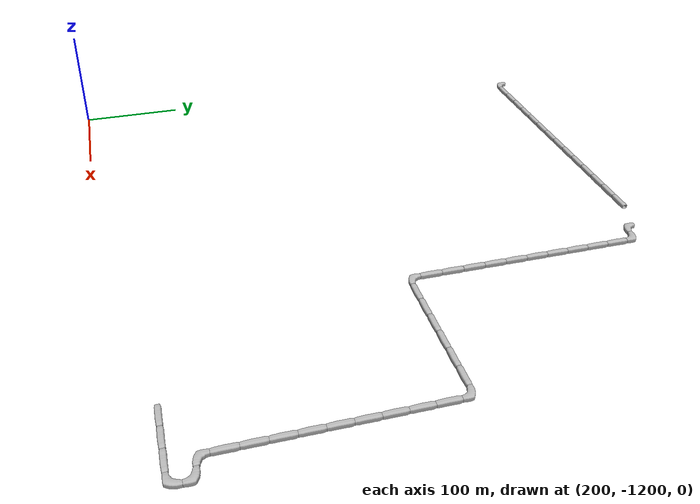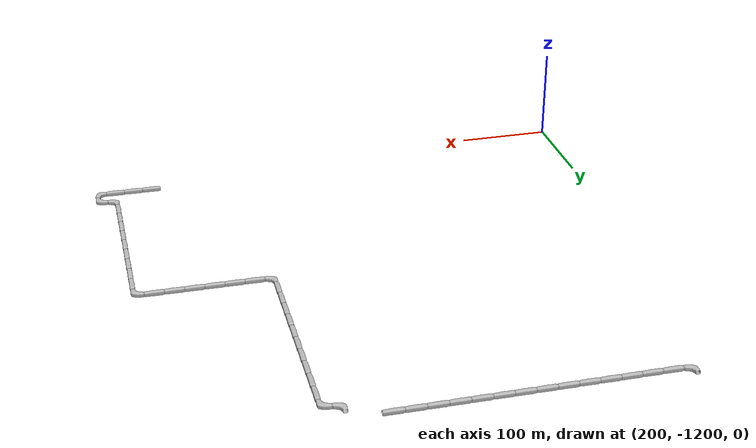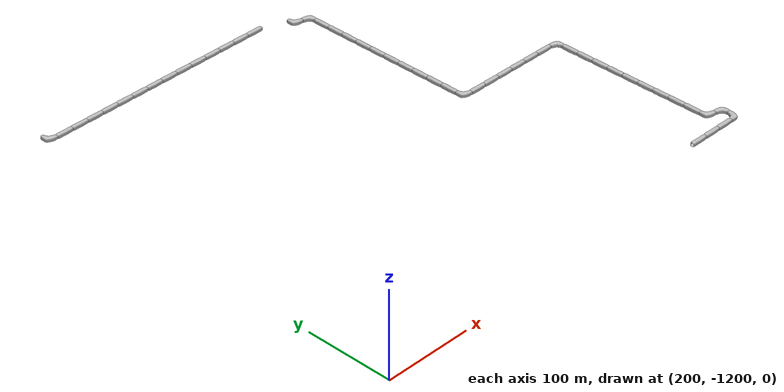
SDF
<sdf version="1.6">
 <world name="cave_8000_64">
  <include>
   <static>true</static>
   <name>cave_12_-35</name>
   <pose>240 -700 0 0 0 0.0</pose>
   <uri>model://cave_L_20m</uri>
  </include>
  <include>
   <static>true</static>
   <name>cave_13_-35</name>
   <pose>260 -700 0 0 0 1.5707963267948966</pose>
   <uri>model://cave_straight_20m</uri>
  </include>
  <include>
   <static>true</static>
   <name>cave_14_-35</name>
   <pose>280 -700 0 0 0 1.5707963267948966</pose>
   <uri>model://cave_straight_20m</uri>
  </include>
  <include>
   <static>true</static>
   <name>cave_15_-35</name>
   <pose>300 -700 0 0 0 1.5707963267948966</pose>
   <uri>model://cave_straight_20m</uri>
  </include>
  <include>
   <static>true</static>
   <name>cave_16_-35</name>
   <pose>320 -700 0 0 0 1.5707963267948966</pose>
   <uri>model://cave_straight_20m</uri>
  </include>
  <include>
   <static>true</static>
   <name>cave_17_-35</name>
   <pose>340 -700 0 0 0 1.5707963267948966</pose>
   <uri>model://cave_straight_20m</uri>
  </include>
  <include>
   <static>true</static>
   <name>cave_18_-35</name>
   <pose>360 -700 0 0 0 1.5707963267948966</pose>
   <uri>model://cave_straight_20m</uri>
  </include>
  <include>
   <static>true</static>
   <name>cave_19_-35</name>
   <pose>380 -700 0 0 0 1.5707963267948966</pose>
   <uri>model://cave_straight_20m</uri>
  </include>
  <include>
   <static>true</static>
   <name>cave_20_-35</name>
   <pose>400 -700 0 0 0 1.5707963267948966</pose>
   <uri>model://cave_straight_20m</uri>
  </include>
  <include>
   <static>true</static>
   <name>cave_21_-35</name>
   <pose>420 -700 0 0 0 1.5707963267948966</pose>
   <uri>model://cave_straight_20m</uri>
  </include>
  <include>
   <static>true</static>
   <name>cave_22_-35</name>
   <pose>440 -700 0 0 0 1.5707963267948966</pose>
   <uri>model://cave_straight_20m</uri>
  </include>
  <include>
   <static>true</static>
   <name>cave_23_-35</name>
   <pose>460 -700 0 0 0 1.5707963267948966</pose>
   <uri>model://cave_straight_20m</uri>
  </include>
  <include>
   <static>true</static>
   <name>cave_24_-35</name>
   <pose>480 -700 0 0 0 1.5707963267948966</pose>
   <uri>model://cave_straight_20m</uri>
  </include>
  <include>
   <static>true</static>
   <name>cave_25_-35</name>
   <pose>500 -700 0 0 0 1.5707963267948966</pose>
   <uri>model://cave_straight_20m</uri>
  </include>
  <include>
   <static>true</static>
   <name>cave_26_-35</name>
   <pose>520 -700 0 0 0 1.5707963267948966</pose>
   <uri>model://cave_straight_20m</uri>
  </include>
  <include>
   <static>true</static>
   <name>cave_28_-36</name>
   <pose>560 -720 0 0 0 0.0</pose>
   <uri>model://cave_L_20m</uri>
  </include>
  <include>
   <static>true</static>
   <name>cave_29_-36</name>
   <pose>580 -720 0 0 0 3.141592653589793</pose>
   <uri>model://cave_L_20m</uri>
  </include>
  <include>
   <static>true</static>
   <name>cave_29_-37</name>
   <pose>580 -740 0 0 0 0.0</pose>
   <uri>model://cave_straight_20m</uri>
  </include>
  <include>
   <static>true</static>
   <name>cave_29_-38</name>
   <pose>580 -760 0 0 0 0.0</pose>
   <uri>model://cave_straight_20m</uri>
  </include>
  <include>
   <static>true</static>
   <name>cave_29_-39</name>
   <pose>580 -780 0 0 0 0.0</pose>
   <uri>model://cave_straight_20m</uri>
  </include>
  <include>
   <static>true</static>
   <name>cave_29_-40</name>
   <pose>580 -800 0 0 0 0.0</pose>
   <uri>model://cave_straight_20m</uri>
  </include>
  <include>
   <static>true</static>
   <name>cave_29_-41</name>
   <pose>580 -820 0 0 0 0.0</pose>
   <uri>model://cave_straight_20m</uri>
  </include>
  <include>
   <static>true</static>
   <name>cave_29_-42</name>
   <pose>580 -840 0 0 0 0.0</pose>
   <uri>model://cave_straight_20m</uri>
  </include>
  <include>
   <static>true</static>
   <name>cave_29_-43</name>
   <pose>580 -860 0 0 0 0.0</pose>
   <uri>model://cave_straight_20m</uri>
  </include>
  <include>
   <static>true</static>
   <name>cave_29_-44</name>
   <pose>580 -880 0 0 0 0.0</pose>
   <uri>model://cave_straight_20m</uri>
  </include>
  <include>
   <static>true</static>
   <name>cave_29_-45</name>
   <pose>580 -900 0 0 0 0.0</pose>
   <uri>model://cave_straight_20m</uri>
  </include>
  <include>
   <static>true</static>
   <name>cave_29_-46</name>
   <pose>580 -920 0 0 0 0.0</pose>
   <uri>model://cave_straight_20m</uri>
  </include>
  <include>
   <static>true</static>
   <name>cave_29_-47</name>
   <pose>580 -940 0 0 0 0.0</pose>
   <uri>model://cave_L_20m</uri>
  </include>
  <include>
   <static>true</static>
   <name>cave_30_-47</name>
   <pose>600 -940 0 0 0 1.5707963267948966</pose>
   <uri>model://cave_straight_20m</uri>
  </include>
  <include>
   <static>true</static>
   <name>cave_31_-47</name>
   <pose>620 -940 0 0 0 1.5707963267948966</pose>
   <uri>model://cave_straight_20m</uri>
  </include>
  <include>
   <static>true</static>
   <name>cave_32_-47</name>
   <pose>640 -940 0 0 0 1.5707963267948966</pose>
   <uri>model://cave_straight_20m</uri>
  </include>
  <include>
   <static>true</static>
   <name>cave_33_-47</name>
   <pose>660 -940 0 0 0 1.5707963267948966</pose>
   <uri>model://cave_straight_20m</uri>
  </include>
  <include>
   <static>true</static>
   <name>cave_34_-47</name>
   <pose>680 -940 0 0 0 1.5707963267948966</pose>
   <uri>model://cave_straight_20m</uri>
  </include>
  <include>
   <static>true</static>
   <name>cave_35_-47</name>
   <pose>700 -940 0 0 0 1.5707963267948966</pose>
   <uri>model://cave_straight_20m</uri>
  </include>
  <include>
   <static>true</static>
   <name>cave_36_-47</name>
   <pose>720 -940 0 0 0 3.141592653589793</pose>
   <uri>model://cave_L_20m</uri>
  </include>
  <include>
   <static>true</static>
   <name>cave_36_-48</name>
   <pose>720 -960 0 0 0 0.0</pose>
   <uri>model://cave_straight_20m</uri>
  </include>
  <include>
   <static>true</static>
   <name>cave_36_-49</name>
   <pose>720 -980 0 0 0 0.0</pose>
   <uri>model://cave_straight_20m</uri>
  </include>
  <include>
   <static>true</static>
   <name>cave_36_-50</name>
   <pose>720 -1000 0 0 0 0.0</pose>
   <uri>model://cave_straight_20m</uri>
  </include>
  <include>
   <static>true</static>
   <name>cave_36_-51</name>
   <pose>720 -1020 0 0 0 0.0</pose>
   <uri>model://cave_straight_20m</uri>
  </include>
  <include>
   <static>true</static>
   <name>cave_36_-52</name>
   <pose>720 -1040 0 0 0 0.0</pose>
   <uri>model://cave_straight_20m</uri>
  </include>
  <include>
   <static>true</static>
   <name>cave_36_-53</name>
   <pose>720 -1060 0 0 0 0.0</pose>
   <uri>model://cave_straight_20m</uri>
  </include>
  <include>
   <static>true</static>
   <name>cave_36_-54</name>
   <pose>720 -1080 0 0 0 0.0</pose>
   <uri>model://cave_straight_20m</uri>
  </include>
  <include>
   <static>true</static>
   <name>cave_36_-55</name>
   <pose>720 -1100 0 0 0 0.0</pose>
   <uri>model://cave_straight_20m</uri>
  </include>
  <include>
   <static>true</static>
   <name>cave_36_-56</name>
   <pose>720 -1120 0 0 0 0.0</pose>
   <uri>model://cave_straight_20m</uri>
  </include>
  <include>
   <static>true</static>
   <name>cave_36_-57</name>
   <pose>720 -1140 0 0 0 0.0</pose>
   <uri>model://cave_L_20m</uri>
  </include>
  <include>
   <static>true</static>
   <name>cave_37_-57</name>
   <pose>740 -1140 0 0 0 3.141592653589793</pose>
   <uri>model://cave_L_20m</uri>
  </include>
  <include>
   <static>true</static>
   <name>cave_37_-58</name>
   <pose>740 -1160 0 0 0 1.5707963267948966</pose>
   <uri>model://cave_L_20m</uri>
  </include>
  <include>
   <static>true</static>
   <name>cave_36_-58</name>
   <pose>720 -1160 0 0 0 1.5707963267948966</pose>
   <uri>model://cave_straight_20m</uri>
  </include>
  <include>
   <static>true</static>
   <name>cave_35_-58</name>
   <pose>700 -1160 0 0 0 1.5707963267948966</pose>
   <uri>model://cave_straight_20m</uri>
  </include>
  <include>
   <static>true</static>
   <name>cave_34_-58</name>
   <pose>680 -1160 0 0 0 1.5707963267948966</pose>
   <uri>model://cave_straight_20m</uri>
  </include>
 </world>
</sdf>
